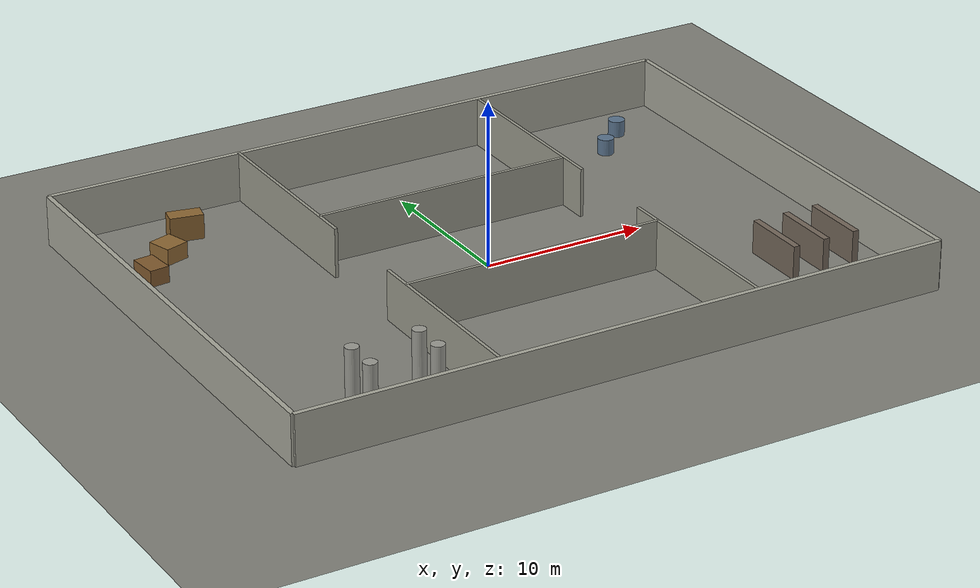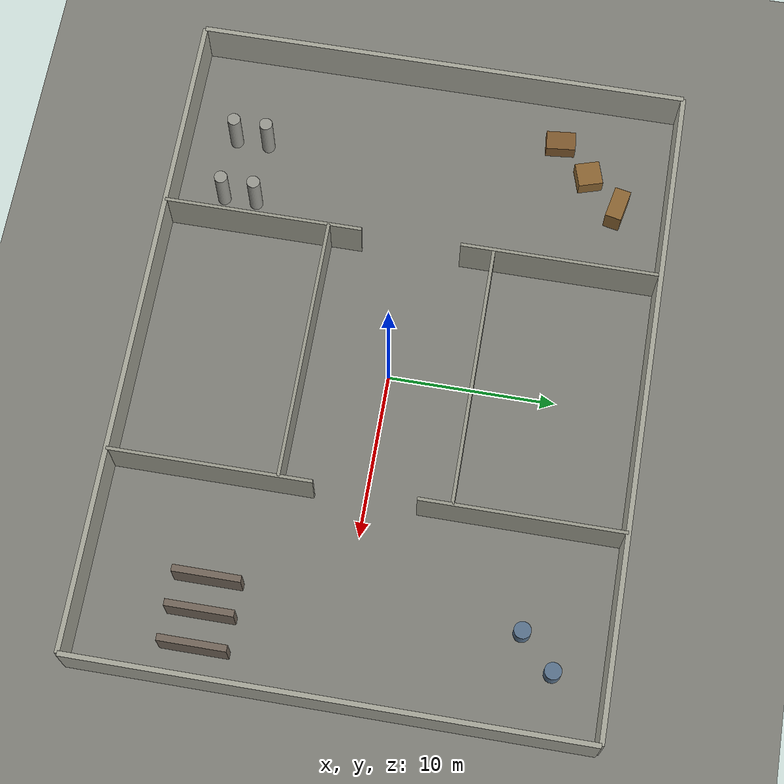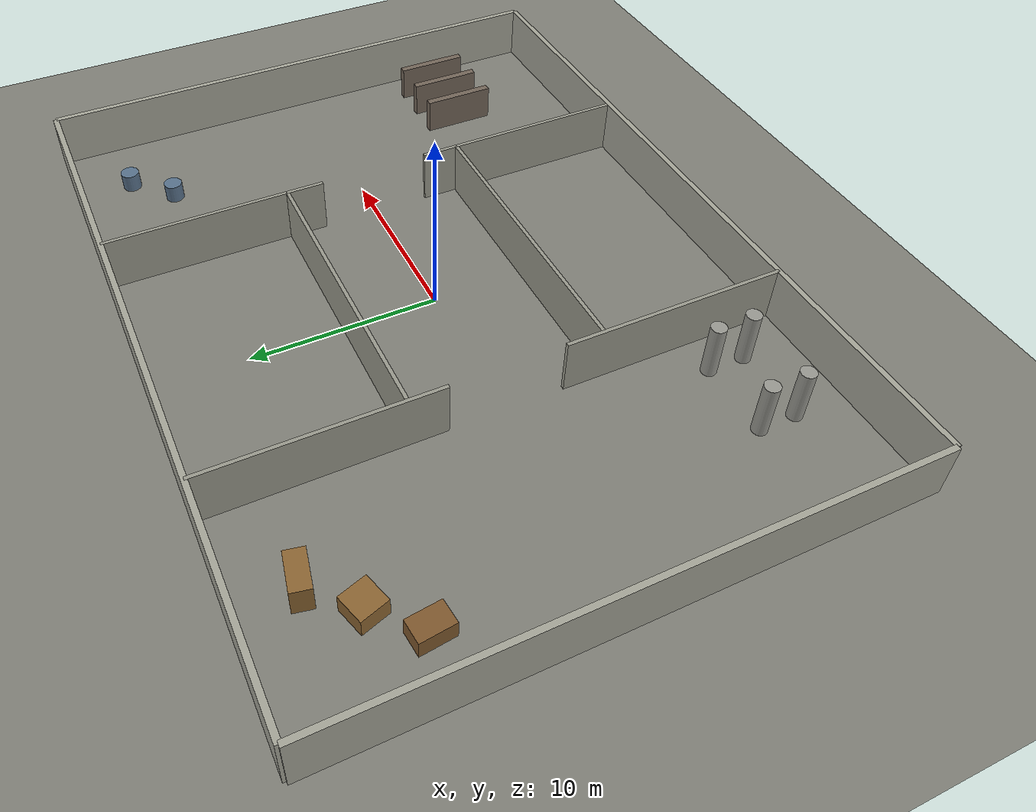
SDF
<sdf version="1.10">
 <world name="diamants_indoor">
  <plugin name="gz::sim::systems::Physics" filename="gz-sim-physics-system"/>
  <plugin name="gz::sim::systems::Sensors" filename="gz-sim-sensors-system">
   <render_engine>ogre2</render_engine>
  </plugin>
  <plugin name="gz::sim::systems::SceneBroadcaster" filename="gz-sim-scene-broadcaster-system"/>
  <plugin name="gz::sim::systems::UserCommands" filename="gz-sim-user-commands-system"/>
  <plugin name="gz::sim::systems::Contact" filename="gz-sim-contact-system"/>
  <gravity>0 0 -9.8</gravity>
  <atmosphere type="adiabatic"/>
  <physics type="ode">
   <max_step_size>0.001</max_step_size>
   <real_time_factor>1</real_time_factor>
   <real_time_update_rate>1000</real_time_update_rate>
   <ode><solver><type>quick</type><iters>50</iters><sor>1.0</sor></solver></ode>
  </physics>
  <scene><ambient>0.4 0.4 0.4 1</ambient><background>0.3 0.3 0.3 1</background><shadows>true</shadows></scene>
  <model name="floor">
   <static>true</static>
   <link name="link">
    <collision name="c"><geometry><plane><normal>0 0 1</normal><size>60 50</size></plane></geometry></collision>
    <visual name="v">
     <geometry><plane><normal>0 0 1</normal><size>60 50</size></plane></geometry>
     <material>
      <ambient>0.45 0.45 0.42 1</ambient>
      <diffuse>0.50 0.50 0.47 1</diffuse>
      <specular>0.2 0.2 0.2 1</specular>
     </material>
    </visual>
   </link>
  </model>
  <model name="wall_north">
   <static>true</static>
   <pose>0 15 1.5 0 0 0</pose>
   <link name="l">
    <collision name="c"><geometry><box><size>40 0.3 3</size></box></geometry></collision>
    <visual name="v">
     <geometry><box><size>40 0.3 3</size></box></geometry>
     <material><ambient>0.6 0.6 0.55 1</ambient><diffuse>0.65 0.65 0.60 1</diffuse></material>
    </visual>
   </link>
  </model>
  <model name="wall_south">
   <static>true</static>
   <pose>0 -15 1.5 0 0 0</pose>
   <link name="l">
    <collision name="c"><geometry><box><size>40 0.3 3</size></box></geometry></collision>
    <visual name="v">
     <geometry><box><size>40 0.3 3</size></box></geometry>
     <material><ambient>0.6 0.6 0.55 1</ambient><diffuse>0.65 0.65 0.60 1</diffuse></material>
    </visual>
   </link>
  </model>
  <model name="wall_east">
   <static>true</static>
   <pose>20 0 1.5 0 0 0</pose>
   <link name="l">
    <collision name="c"><geometry><box><size>0.3 30 3</size></box></geometry></collision>
    <visual name="v">
     <geometry><box><size>0.3 30 3</size></box></geometry>
     <material><ambient>0.6 0.6 0.55 1</ambient><diffuse>0.65 0.65 0.60 1</diffuse></material>
    </visual>
   </link>
  </model>
  <model name="wall_west">
   <static>true</static>
   <pose>-20 0 1.5 0 0 0</pose>
   <link name="l">
    <collision name="c"><geometry><box><size>0.3 30 3</size></box></geometry></collision>
    <visual name="v">
     <geometry><box><size>0.3 30 3</size></box></geometry>
     <material><ambient>0.6 0.6 0.55 1</ambient><diffuse>0.65 0.65 0.60 1</diffuse></material>
    </visual>
   </link>
  </model>
  <model name="div_w_top">
   <static>true</static>
   <pose>-8 9 1.5 0 0 0</pose>
   <link name="l">
    <collision name="c"><geometry><box><size>0.2 12 3</size></box></geometry></collision>
    <visual name="v">
     <geometry><box><size>0.2 12 3</size></box></geometry>
     <material><ambient>0.55 0.55 0.50 1</ambient><diffuse>0.60 0.60 0.55 1</diffuse></material>
    </visual>
   </link>
  </model>
  <model name="div_w_bot">
   <static>true</static>
   <pose>-8 -9 1.5 0 0 0</pose>
   <link name="l">
    <collision name="c"><geometry><box><size>0.2 12 3</size></box></geometry></collision>
    <visual name="v">
     <geometry><box><size>0.2 12 3</size></box></geometry>
     <material><ambient>0.55 0.55 0.50 1</ambient><diffuse>0.60 0.60 0.55 1</diffuse></material>
    </visual>
   </link>
  </model>
  <model name="div_e_top">
   <static>true</static>
   <pose>8 9 1.5 0 0 0</pose>
   <link name="l">
    <collision name="c"><geometry><box><size>0.2 12 3</size></box></geometry></collision>
    <visual name="v">
     <geometry><box><size>0.2 12 3</size></box></geometry>
     <material><ambient>0.55 0.55 0.50 1</ambient><diffuse>0.60 0.60 0.55 1</diffuse></material>
    </visual>
   </link>
  </model>
  <model name="div_e_bot">
   <static>true</static>
   <pose>8 -9 1.5 0 0 0</pose>
   <link name="l">
    <collision name="c"><geometry><box><size>0.2 12 3</size></box></geometry></collision>
    <visual name="v">
     <geometry><box><size>0.2 12 3</size></box></geometry>
     <material><ambient>0.55 0.55 0.50 1</ambient><diffuse>0.60 0.60 0.55 1</diffuse></material>
    </visual>
   </link>
  </model>
  <model name="corr_n">
   <static>true</static>
   <pose>0 5 1.5 0 0 0</pose>
   <link name="l">
    <collision name="c"><geometry><box><size>16 0.2 3</size></box></geometry></collision>
    <visual name="v">
     <geometry><box><size>16 0.2 3</size></box></geometry>
     <material><ambient>0.55 0.55 0.50 1</ambient><diffuse>0.60 0.60 0.55 1</diffuse></material>
    </visual>
   </link>
  </model>
  <model name="corr_s">
   <static>true</static>
   <pose>0 -5 1.5 0 0 0</pose>
   <link name="l">
    <collision name="c"><geometry><box><size>16 0.2 3</size></box></geometry></collision>
    <visual name="v">
     <geometry><box><size>16 0.2 3</size></box></geometry>
     <material><ambient>0.55 0.55 0.50 1</ambient><diffuse>0.60 0.60 0.55 1</diffuse></material>
    </visual>
   </link>
  </model>
  <model name="crate_1">
   <static>true</static>
   <pose>-15 10 0.5 0 0 0.3</pose>
   <link name="l">
    <collision name="c"><geometry><box><size>1.5 1.5 1.0</size></box></geometry></collision>
    <visual name="v">
     <geometry><box><size>1.5 1.5 1.0</size></box></geometry>
     <material><ambient>0.5 0.35 0.15 1</ambient><diffuse>0.55 0.40 0.20 1</diffuse></material>
    </visual>
   </link>
  </model>
  <model name="crate_2">
   <static>true</static>
   <pose>-13 12 0.75 0 0 -0.2</pose>
   <link name="l">
    <collision name="c"><geometry><box><size>2.0 1.0 1.5</size></box></geometry></collision>
    <visual name="v">
     <geometry><box><size>2.0 1.0 1.5</size></box></geometry>
     <material><ambient>0.5 0.35 0.15 1</ambient><diffuse>0.55 0.40 0.20 1</diffuse></material>
    </visual>
   </link>
  </model>
  <model name="crate_3">
   <static>true</static>
   <pose>-17 8 0.5 0 0 0.1</pose>
   <link name="l">
    <collision name="c"><geometry><box><size>1.2 1.8 1.0</size></box></geometry></collision>
    <visual name="v">
     <geometry><box><size>1.2 1.8 1.0</size></box></geometry>
     <material><ambient>0.45 0.30 0.12 1</ambient><diffuse>0.50 0.35 0.18 1</diffuse></material>
    </visual>
   </link>
  </model>
  <model name="pillar_1">
   <static>true</static>
   <pose>-14 -10 1.5 0 0 0</pose>
   <link name="l">
    <collision name="c">
     <geometry><cylinder><radius>0.4</radius><length>3</length></cylinder></geometry>
    </collision>
    <visual name="v">
     <geometry><cylinder><radius>0.4</radius><length>3</length></cylinder></geometry>
     <material><ambient>0.55 0.55 0.52 1</ambient><diffuse>0.60 0.60 0.57 1</diffuse></material>
    </visual>
   </link>
  </model>
  <model name="pillar_2">
   <static>true</static>
   <pose>-14 -12 1.5 0 0 0</pose>
   <link name="l">
    <collision name="c">
     <geometry><cylinder><radius>0.4</radius><length>3</length></cylinder></geometry>
    </collision>
    <visual name="v">
     <geometry><cylinder><radius>0.4</radius><length>3</length></cylinder></geometry>
     <material><ambient>0.55 0.55 0.52 1</ambient><diffuse>0.60 0.60 0.57 1</diffuse></material>
    </visual>
   </link>
  </model>
  <model name="pillar_3">
   <static>true</static>
   <pose>-10 -10 1.5 0 0 0</pose>
   <link name="l">
    <collision name="c">
     <geometry><cylinder><radius>0.4</radius><length>3</length></cylinder></geometry>
    </collision>
    <visual name="v">
     <geometry><cylinder><radius>0.4</radius><length>3</length></cylinder></geometry>
     <material><ambient>0.55 0.55 0.52 1</ambient><diffuse>0.60 0.60 0.57 1</diffuse></material>
    </visual>
   </link>
  </model>
  <model name="pillar_4">
   <static>true</static>
   <pose>-10 -12 1.5 0 0 0</pose>
   <link name="l">
    <collision name="c">
     <geometry><cylinder><radius>0.4</radius><length>3</length></cylinder></geometry>
    </collision>
    <visual name="v">
     <geometry><cylinder><radius>0.4</radius><length>3</length></cylinder></geometry>
     <material><ambient>0.55 0.55 0.52 1</ambient><diffuse>0.60 0.60 0.57 1</diffuse></material>
    </visual>
   </link>
  </model>
  <model name="shelf_1">
   <static>true</static>
   <pose>14 -8 1.0 0 0 0</pose>
   <link name="l">
    <collision name="c"><geometry><box><size>0.4 4.0 2.0</size></box></geometry></collision>
    <visual name="v">
     <geometry><box><size>0.4 4.0 2.0</size></box></geometry>
     <material><ambient>0.4 0.35 0.3 1</ambient><diffuse>0.45 0.40 0.35 1</diffuse></material>
    </visual>
   </link>
  </model>
  <model name="shelf_2">
   <static>true</static>
   <pose>16 -8 1.0 0 0 0</pose>
   <link name="l">
    <collision name="c"><geometry><box><size>0.4 4.0 2.0</size></box></geometry></collision>
    <visual name="v">
     <geometry><box><size>0.4 4.0 2.0</size></box></geometry>
     <material><ambient>0.4 0.35 0.3 1</ambient><diffuse>0.45 0.40 0.35 1</diffuse></material>
    </visual>
   </link>
  </model>
  <model name="shelf_3">
   <static>true</static>
   <pose>18 -8 1.0 0 0 0</pose>
   <link name="l">
    <collision name="c"><geometry><box><size>0.4 4.0 2.0</size></box></geometry></collision>
    <visual name="v">
     <geometry><box><size>0.4 4.0 2.0</size></box></geometry>
     <material><ambient>0.4 0.35 0.3 1</ambient><diffuse>0.45 0.40 0.35 1</diffuse></material>
    </visual>
   </link>
  </model>
  <model name="barrel_1">
   <static>true</static>
   <pose>14 10 0.5 0 0 0</pose>
   <link name="l">
    <collision name="c">
     <geometry><cylinder><radius>0.5</radius><length>1.0</length></cylinder></geometry>
    </collision>
    <visual name="v">
     <geometry><cylinder><radius>0.5</radius><length>1.0</length></cylinder></geometry>
     <material><ambient>0.3 0.4 0.5 1</ambient><diffuse>0.35 0.45 0.55 1</diffuse></material>
    </visual>
   </link>
  </model>
  <model name="barrel_2">
   <static>true</static>
   <pose>16 12 0.5 0 0 0</pose>
   <link name="l">
    <collision name="c">
     <geometry><cylinder><radius>0.5</radius><length>1.0</length></cylinder></geometry>
    </collision>
    <visual name="v">
     <geometry><cylinder><radius>0.5</radius><length>1.0</length></cylinder></geometry>
     <material><ambient>0.3 0.4 0.5 1</ambient><diffuse>0.35 0.45 0.55 1</diffuse></material>
    </visual>
   </link>
  </model>
  <light name="ceiling_center" type="point">
   <pose>0 0 2.8 0 0 0</pose>
   <intensity>1.5</intensity>
   <diffuse>0.95 0.95 0.90 1</diffuse>
   <specular>0.3 0.3 0.3 1</specular>
   <attenuation>
    <range>30</range>
    <linear>0.02</linear>
    <constant>0.8</constant>
    <quadratic>0.005</quadratic>
   </attenuation>
  </light>
  <light name="ceiling_nw" type="point">
   <pose>-14 10 2.8 0 0 0</pose>
   <intensity>1.0</intensity>
   <diffuse>0.9 0.9 0.85 1</diffuse>
   <attenuation>
    <range>20</range>
    <linear>0.03</linear>
    <constant>0.8</constant>
    <quadratic>0.01</quadratic>
   </attenuation>
  </light>
  <light name="ceiling_ne" type="point">
   <pose>14 10 2.8 0 0 0</pose>
   <intensity>1.0</intensity>
   <diffuse>0.9 0.9 0.85 1</diffuse>
   <attenuation>
    <range>20</range>
    <linear>0.03</linear>
    <constant>0.8</constant>
    <quadratic>0.01</quadratic>
   </attenuation>
  </light>
  <light name="ceiling_sw" type="point">
   <pose>-14 -10 2.8 0 0 0</pose>
   <intensity>1.0</intensity>
   <diffuse>0.9 0.9 0.85 1</diffuse>
   <attenuation>
    <range>20</range>
    <linear>0.03</linear>
    <constant>0.8</constant>
    <quadratic>0.01</quadratic>
   </attenuation>
  </light>
  <light name="ceiling_se" type="point">
   <pose>14 -10 2.8 0 0 0</pose>
   <intensity>1.0</intensity>
   <diffuse>0.9 0.9 0.85 1</diffuse>
   <attenuation>
    <range>20</range>
    <linear>0.03</linear>
    <constant>0.8</constant>
    <quadratic>0.01</quadratic>
   </attenuation>
  </light>
 </world>
</sdf>
